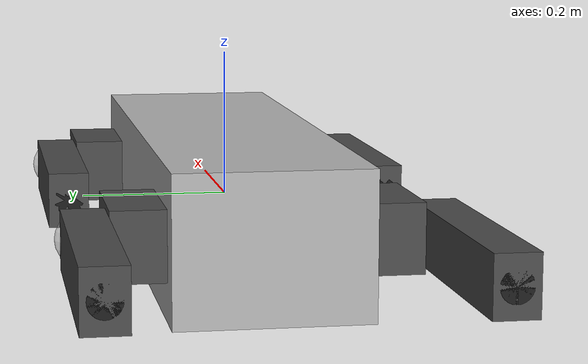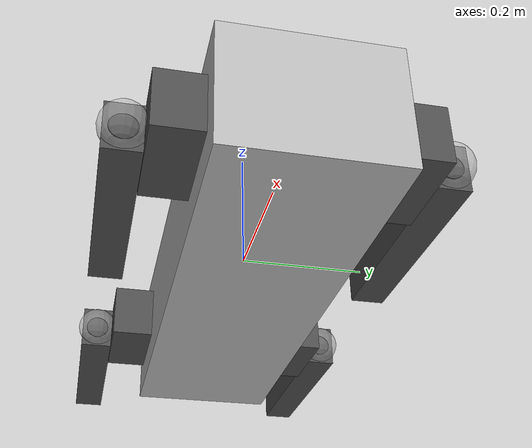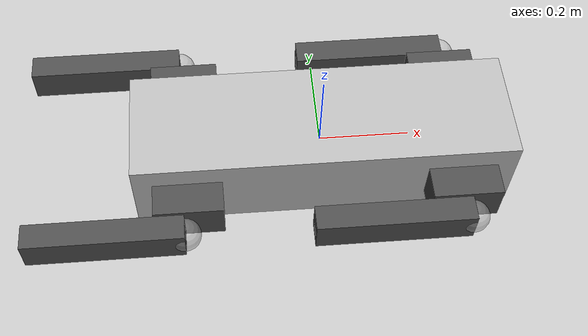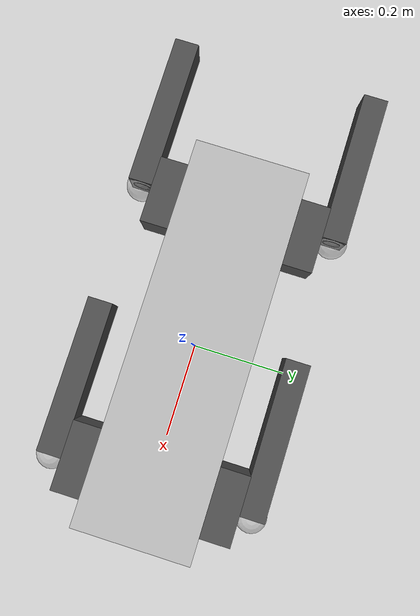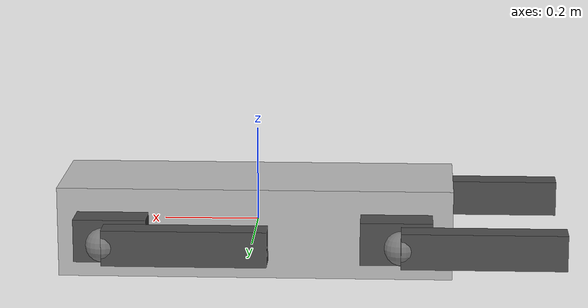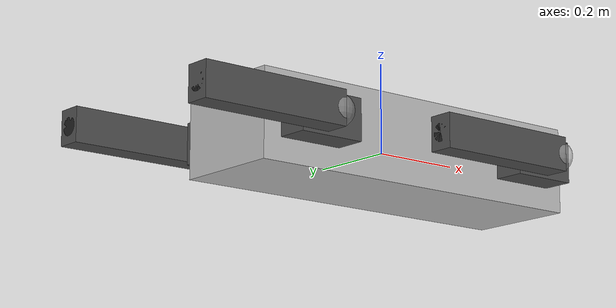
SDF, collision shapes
<sdf version='1.7'>
  <model name='vision60'>
    <link name='body'>
      <inertial>
        <pose>0 0 0 0 -0 0</pose>
        <mass>25</mass>
        <inertia>
          <ixx>0.0986</ixx>
          <ixy>0</ixy>
          <ixz>0</ixz>
          <iyy>0.8105</iyy>
          <iyz>0</iyz>
          <izz>0.8369</izz>
        </inertia>
      </inertial>
      <collision name='body_collision'>
        <pose>0 0 0 0 -0 0</pose>
        <geometry>
          <box>
            <size>0.83 0.25 0.19</size>
          </box>
        </geometry>
        <surface>
          <contact>
            <ode/>
          </contact>
          <friction>
            <ode/>
          </friction>
        </surface>
      </collision>
      <visual name='body_visual'>
        <pose>0 0 0 0 -0 0</pose>
        <geometry>
          <mesh>
            <scale>1 1 1</scale>
            <uri>model:///meshes/v5_body_decimated.stl</uri>
          </mesh>
        </geometry>
      </visual>
      <gravity>1</gravity>
    </link>

    <link name='hip0'>
      <pose relative_to='8'>0 0 0 0 -0 0</pose>
      <inertial>
        <pose>0 0 0 0 -0 0</pose>
        <mass>1.975</mass>
        <inertia>
          <ixx>0.00891458</ixx>
          <ixy>0</ixy>
          <ixz>0</ixz>
          <iyy>0.0100573</iyy>
          <iyz>0</iyz>
          <izz>0.015337</izz>
        </inertia>
      </inertial>
      <collision name='hip0_collision'>
        <pose>-0.01 0.0196 0 1.5708 -0 0</pose>
        <geometry>
          <box>
            <size>0.15 0.09 0.15</size>
          </box>
        </geometry>
        <surface>
          <contact>
            <ode/>
          </contact>
          <friction>
            <ode/>
          </friction>
        </surface>
      </collision>
      <visual name='hip0_visual'>
        <pose>0 0 0 0 -0 0</pose>
        <geometry>
          <mesh>
            <scale>1 1 1</scale>
            <uri>model:///meshes/v5_pod_decimated.stl</uri>
          </mesh>
        </geometry>
        <material>
          <script>
            <name>Gazebo/DarkGray</name>
            <uri>file://media/materials/scripts/gazebo.material</uri>
          </script>
        </material>
      </visual>
    </link>

    <joint name='8' type='revolute'>
      <pose relative_to='body'>0.3075 0.1 0 0 -0 0</pose>
      <parent>body</parent>
      <child>hip0</child>
      <axis>
        <xyz>1 0 0</xyz>
        <limit>
          <lower>-0.43</lower>
          <upper>0.43</upper>
          <effort>375</effort>
          <velocity>8.6</velocity>
        </limit>
        <dynamics>
          <damping>0</damping>
          <friction>0</friction>
          <spring_reference>0</spring_reference>
          <spring_stiffness>0</spring_stiffness>
        </dynamics>
      </axis>
    </joint>

    <link name='upper0'>
      <pose relative_to='0'>0 0 0 0 -0 0</pose>
      <inertial>
        <pose>0 0 0 0 -0 0</pose>
        <mass>2.525</mass>
        <inertia>
          <ixx>0.0003125</ixx>
          <ixy>0</ixy>
          <ixz>0</ixz>
          <iyy>0.0040625</iyy>
          <iyz>0</iyz>
          <izz>0.0040625</izz>
        </inertia>
      </inertial>
      <collision name='upper0_collision'>
        <pose>-0.17 0 0 0 -0 0</pose>
        <geometry>
          <box>
            <size>0.34 0.055 0.075</size>
          </box>
        </geometry>
        <surface>
          <contact>
            <ode/>
          </contact>
          <friction>
            <ode/>
          </friction>
        </surface>
      </collision>
      <visual name='upper0_visual'>
        <pose>0 0 0 0 -0 0</pose>
        <geometry>
          <mesh>
            <scale>1 1 1</scale>
            <uri>model:///meshes/v5_left_upper_decimated.stl</uri>
          </mesh>
        </geometry>
        <material>
          <script>
            <name>Gazebo/DarkGray</name>
            <uri>file://media/materials/scripts/gazebo.material</uri>
          </script>
        </material>
      </visual>
    </link>

    <joint name='0' type='revolute'>
      <pose relative_to='hip0'>0 0.1221 0 0 -0 0</pose>
      <parent>hip0</parent>
      <child>upper0</child>
      <axis>
        <xyz>0 -1 0</xyz>
        <limit>
          <lower>-6.28</lower>
          <upper>6.28</upper>
          <effort>87.5</effort>
          <velocity>30</velocity>
        </limit>
        <dynamics>
          <damping>0</damping>
          <friction>0</friction>
          <spring_reference>0</spring_reference>
          <spring_stiffness>0</spring_stiffness>
        </dynamics>
      </axis>
    </joint>

    <link name='lower0'>
      <pose relative_to='1'>0 0 0 0 -0 0</pose>
      <inertial>
        <pose>0.097343 0 0 0 -0 0</pose>
        <mass>0.525</mass>
        <inertia>
          <ixx>0.00133575</ixx>
          <ixy>0</ixy>
          <ixz>0</ixz>
          <iyy>0.0137725</iyy>
          <iyz>0</iyz>
          <izz>0.0125618</izz>
        </inertia>
      </inertial>
      <collision name='lower0_collision'>
        <pose>0.17035 0 0 0 1.5708 0</pose>
        <geometry>
          <cylinder>
            <length>0.3407</length>
            <radius>0.02</radius>
          </cylinder>
        </geometry>
        <surface>
          <contact>
            <ode/>
          </contact>
          <friction>
            <ode/>
          </friction>
        </surface>
      </collision>
      <visual name='lower0_visual'>
        <pose>0 0 0 0 -0.13 0</pose>
        <geometry>
          <mesh>
            <scale>1 1 1</scale>
            <uri>model:///meshes/v5_lower_decimated.stl</uri>
          </mesh>
        </geometry>
        <material>
          <script>
            <name>Gazebo/Black</name>
            <uri>file://media/materials/scripts/gazebo.material</uri>
          </script>
        </material>
      </visual>
    </link>

    <joint name='1' type='revolute'>
      <pose relative_to='upper0'>-0.34 0 0 0 -0 0</pose>
      <parent>upper0</parent>
      <child>lower0</child>
      <axis>
        <xyz>0 1 0</xyz>
        <limit>
          <lower>0.3</lower>
          <upper>2.6</upper>
          <effort>87.5</effort>
          <velocity>30</velocity>
        </limit>
        <dynamics>
          <damping>0</damping>
          <friction>0</friction>
          <spring_reference>0</spring_reference>
          <spring_stiffness>0</spring_stiffness>
        </dynamics>
      </axis>
    </joint>

    <link name='hip1'>
      <pose relative_to='9'>0 0 0 0 -0 0</pose>
      <inertial>
        <pose>0 0 0 0 -0 0</pose>
        <mass>1.975</mass>
        <inertia>
          <ixx>0.00891458</ixx>
          <ixy>0</ixy>
          <ixz>0</ixz>
          <iyy>0.0100573</iyy>
          <iyz>0</iyz>
          <izz>0.015337</izz>
        </inertia>
      </inertial>
      <collision name='hip1_collision'>
        <pose>0.01 0.0196 0 1.5708 -0 0</pose>
        <geometry>
          <box>
            <size>0.15 0.09 0.15</size>
          </box>
        </geometry>
        <surface>
          <contact>
            <ode/>
          </contact>
          <friction>
            <ode/>
          </friction>
        </surface>
      </collision>
      <visual name='hip1_visual'>
        <pose>0 0 0 -3.14159 0 -3.14159</pose>
        <geometry>
          <mesh>
            <scale>1 1 1</scale>
            <uri>model:///meshes/v5_pod_decimated.stl</uri>
          </mesh>
        </geometry>
        <material>
          <script>
            <name>Gazebo/DarkGray</name>
            <uri>file://media/materials/scripts/gazebo.material</uri>
          </script>
        </material>
      </visual>
    </link>

    <joint name='9' type='revolute'>
      <pose relative_to='body'>-0.3075 0.1 0 0 -0 0</pose>
      <parent>body</parent>
      <child>hip1</child>
      <axis>
        <xyz>1 0 0</xyz>
        <limit>
          <lower>-0.43</lower>
          <upper>0.43</upper>
          <effort>375</effort>
          <velocity>8.6</velocity>
        </limit>
        <dynamics>
          <damping>0</damping>
          <friction>0</friction>
          <spring_reference>0</spring_reference>
          <spring_stiffness>0</spring_stiffness>
        </dynamics>
      </axis>
    </joint>

    <link name='upper1'>
      <pose relative_to='2'>0 0 0 0 -0 0</pose>
      <inertial>
        <pose>0 0 0 0 -0 0</pose>
        <mass>2.525</mass>
        <inertia>
          <ixx>0.0003125</ixx>
          <ixy>0</ixy>
          <ixz>0</ixz>
          <iyy>0.0040625</iyy>
          <iyz>0</iyz>
          <izz>0.0040625</izz>
        </inertia>
      </inertial>
      <collision name='upper1_collision'>
        <pose>-0.17 0 0 0 -0 0</pose>
        <geometry>
          <box>
            <size>0.34 0.055 0.075</size>
          </box>
        </geometry>
        <surface>
          <contact>
            <ode/>
          </contact>
          <friction>
            <ode/>
          </friction>
        </surface>
      </collision>
      <visual name='upper1_visual'>
        <pose>0 0 0 0 -0 0</pose>
        <geometry>
          <mesh>
            <scale>1 1 1</scale>
            <uri>model:///meshes/v5_left_upper_decimated.stl</uri>
          </mesh>
        </geometry>
        <material>
          <script>
            <name>Gazebo/DarkGray</name>
            <uri>file://media/materials/scripts/gazebo.material</uri>
          </script>
        </material>
      </visual>
    </link>

    <joint name='2' type='revolute'>
      <pose relative_to='hip1'>0 0.1221 0 0 -0 0</pose>
      <parent>hip1</parent>
      <child>upper1</child>
      <axis>
        <xyz>0 -1 0</xyz>
        <limit>
          <lower>-3.8</lower>
          <upper>2.27</upper>
          <effort>87.5</effort>
          <velocity>30</velocity>
        </limit>
        <dynamics>
          <damping>0</damping>
          <friction>0</friction>
          <spring_reference>0</spring_reference>
          <spring_stiffness>0</spring_stiffness>
        </dynamics>
      </axis>
    </joint>

    <link name='lower1'>
      <pose relative_to='3'>0 0 0 0 -0 0</pose>
      <inertial>
        <pose>0.097343 0 0 0 -0 0</pose>
        <mass>0.525</mass>
        <inertia>
          <ixx>0.00133575</ixx>
          <ixy>0</ixy>
          <ixz>0</ixz>
          <iyy>0.0137725</iyy>
          <iyz>0</iyz>
          <izz>0.0125618</izz>
        </inertia>
      </inertial>
      <collision name='lower1_collision'>
        <pose>0.17035 0 0 0 1.5708 0</pose>
        <geometry>
          <cylinder>
            <length>0.3407</length>
            <radius>0.02</radius>
          </cylinder>
        </geometry>
        <surface>
          <contact>
            <ode/>
          </contact>
          <friction>
            <ode/>
          </friction>
        </surface>
      </collision>
      <visual name='lower1_visual'>
        <pose>0 0 0 0 -0.13 0</pose>
        <geometry>
          <mesh>
            <scale>1 1 1</scale>
            <uri>model:///meshes/v5_lower_decimated.stl</uri>
          </mesh>
        </geometry>
        <material>
          <script>
            <name>Gazebo/Black</name>
            <uri>file://media/materials/scripts/gazebo.material</uri>
          </script>
        </material>
      </visual>
    </link>

    <joint name='3' type='revolute'>
      <pose relative_to='upper1'>-0.34 0 0 0 -0 0</pose>
      <parent>upper1</parent>
      <child>lower1</child>
      <axis>
        <xyz>0 1 0</xyz>
        <limit>
          <lower>0.3</lower>
          <upper>2.6</upper>
          <effort>87.5</effort>
          <velocity>30</velocity>
        </limit>
        <dynamics>
          <damping>0</damping>
          <friction>0</friction>
          <spring_reference>0</spring_reference>
          <spring_stiffness>0</spring_stiffness>
        </dynamics>
      </axis>
    </joint>

    <link name='hip2'>
      <pose relative_to='10'>0 0 0 0 -0 0</pose>
      <inertial>
        <pose>0 0 0 0 -0 0</pose>
        <mass>1.975</mass>
        <inertia>
          <ixx>0.00891458</ixx>
          <ixy>0</ixy>
          <ixz>0</ixz>
          <iyy>0.0100573</iyy>
          <iyz>0</iyz>
          <izz>0.015337</izz>
        </inertia>
      </inertial>
      <collision name='hip2_collision'>
        <pose>-0.01 -0.0196 0 1.5708 -0 0</pose>
        <geometry>
          <box>
            <size>0.15 0.09 0.15</size>
          </box>
        </geometry>
        <surface>
          <contact>
            <ode/>
          </contact>
          <friction>
            <ode/>
          </friction>
        </surface>
      </collision>
      <visual name='hip2_visual'>
        <pose>0 0 0 3.14159 -0 0</pose>
        <geometry>
          <mesh>
            <scale>1 1 1</scale>
            <uri>model:///meshes/v5_pod_decimated.stl</uri>
          </mesh>
        </geometry>
        <material>
          <script>
            <name>Gazebo/DarkGray</name>
            <uri>file://media/materials/scripts/gazebo.material</uri>
          </script>
        </material>
      </visual>
    </link>

    <joint name='10' type='revolute'>
      <pose relative_to='body'>0.3075 -0.1 0 0 -0 0</pose>
      <parent>body</parent>
      <child>hip2</child>
      <axis>
        <xyz>1 0 0</xyz>
        <limit>
          <lower>-0.43</lower>
          <upper>0.43</upper>
          <effort>375</effort>
          <velocity>8.6</velocity>
        </limit>
        <dynamics>
          <damping>0</damping>
          <friction>0</friction>
          <spring_reference>0</spring_reference>
          <spring_stiffness>0</spring_stiffness>
        </dynamics>
      </axis>
    </joint>

    <link name='upper2'>
      <pose relative_to='4'>0 0 0 0 -0 0</pose>
      <inertial>
        <pose>0 0 0 0 -0 0</pose>
        <mass>2.525</mass>
        <inertia>
          <ixx>0.0003125</ixx>
          <ixy>0</ixy>
          <ixz>0</ixz>
          <iyy>0.0040625</iyy>
          <iyz>0</iyz>
          <izz>0.0040625</izz>
        </inertia>
      </inertial>
      <collision name='upper2_collision'>
        <pose>-0.17 0 0 0 -0 0</pose>
        <geometry>
          <box>
            <size>0.34 0.055 0.075</size>
          </box>
        </geometry>
        <surface>
          <contact>
            <ode/>
          </contact>
          <friction>
            <ode/>
          </friction>
        </surface>
      </collision>
      <visual name='upper2_visual'>
        <pose>0 0 0 0 -0 0</pose>
        <geometry>
          <mesh>
            <scale>1 1 1</scale>
            <uri>model:///meshes/v5_right_upper_decimated.stl</uri>
          </mesh>
        </geometry>
        <material>
          <script>
            <name>Gazebo/DarkGray</name>
            <uri>file://media/materials/scripts/gazebo.material</uri>
          </script>
        </material>
      </visual>
    </link>

    <joint name='4' type='revolute'>
      <pose relative_to='hip2'>0 -0.1221 0 0 -0 0</pose>
      <parent>hip2</parent>
      <child>upper2</child>
      <axis>
        <xyz>0 -1 0</xyz>
        <limit>
          <lower>-6.28</lower>
          <upper>6.28</upper>
          <effort>87.5</effort>
          <velocity>30</velocity>
        </limit>
        <dynamics>
          <damping>0</damping>
          <friction>0</friction>
          <spring_reference>0</spring_reference>
          <spring_stiffness>0</spring_stiffness>
        </dynamics>
      </axis>
    </joint>

    <link name='lower2'>
      <pose relative_to='5'>0 0 0 0 -0 0</pose>
      <inertial>
        <pose>0.097343 0 0 0 -0 0</pose>
        <mass>0.525</mass>
        <inertia>
          <ixx>0.00133575</ixx>
          <ixy>0</ixy>
          <ixz>0</ixz>
          <iyy>0.0137725</iyy>
          <iyz>0</iyz>
          <izz>0.0125618</izz>
        </inertia>
      </inertial>
      <collision name='lower2_collision'>
        <pose>0.17035 0 0 0 1.5708 0</pose>
        <geometry>
          <cylinder>
            <length>0.3407</length>
            <radius>0.02</radius>
          </cylinder>
        </geometry>
        <surface>
          <contact>
            <ode/>
          </contact>
          <friction>
            <ode/>
          </friction>
        </surface>
      </collision>
      <visual name='lower2_visual'>
        <pose>0 0 0 0 -0.13 0</pose>
        <geometry>
          <mesh>
            <scale>1 1 1</scale>
            <uri>model:///meshes/v5_lower_decimated.stl</uri>
          </mesh>
        </geometry>
        <material>
          <script>
            <name>Gazebo/Black</name>
            <uri>file://media/materials/scripts/gazebo.material</uri>
          </script>
        </material>
      </visual>
    </link>

    <joint name='5' type='revolute'>
      <pose relative_to='upper2'>-0.34 0 0 0 -0 0</pose>
      <parent>upper2</parent>
      <child>lower2</child>
      <axis>
        <xyz>0 1 0</xyz>
        <limit>
          <lower>0.3</lower>
          <upper>2.6</upper>
          <effort>87.5</effort>
          <velocity>30</velocity>
        </limit>
        <dynamics>
          <damping>0</damping>
          <friction>0</friction>
          <spring_reference>0</spring_reference>
          <spring_stiffness>0</spring_stiffness>
        </dynamics>
      </axis>
    </joint>

    <link name='hip3'>
      <pose relative_to='11'>0 0 0 0 -0 0</pose>
      <inertial>
        <pose>0 0 0 0 -0 0</pose>
        <mass>1.975</mass>
        <inertia>
          <ixx>0.00891458</ixx>
          <ixy>0</ixy>
          <ixz>0</ixz>
          <iyy>0.0100573</iyy>
          <iyz>0</iyz>
          <izz>0.015337</izz>
        </inertia>
      </inertial>
      <collision name='hip3_collision'>
        <pose>0.01 -0.0196 0 1.5708 -0 0</pose>
        <geometry>
          <box>
            <size>0.15 0.09 0.15</size>
          </box>
        </geometry>
        <surface>
          <contact>
            <ode/>
          </contact>
          <friction>
            <ode/>
          </friction>
        </surface>
      </collision>
      <visual name='hip3_visual'>
        <pose>0 0 0 -0 0 3.14159</pose>
        <geometry>
          <mesh>
            <scale>1 1 1</scale>
            <uri>model:///meshes/v5_pod_decimated.stl</uri>
          </mesh>
        </geometry>
        <material>
          <script>
            <name>Gazebo/DarkGray</name>
            <uri>file://media/materials/scripts/gazebo.material</uri>
          </script>
        </material>
      </visual>
    </link>

    <joint name='11' type='revolute'>
      <pose relative_to='body'>-0.3075 -0.1 0 0 -0 0</pose>
      <parent>body</parent>
      <child>hip3</child>
      <axis>
        <xyz>1 0 0</xyz>
        <limit>
          <lower>-0.43</lower>
          <upper>0.43</upper>
          <effort>375</effort>
          <velocity>8.6</velocity>
        </limit>
        <dynamics>
          <damping>0</damping>
          <friction>0</friction>
          <spring_reference>0</spring_reference>
          <spring_stiffness>0</spring_stiffness>
        </dynamics>
      </axis>
    </joint>

    <link name='upper3'>
      <pose relative_to='6'>0 0 0 0 -0 0</pose>
      <inertial>
        <pose>0 0 0 0 -0 0</pose>
        <mass>2.525</mass>
        <inertia>
          <ixx>0.0003125</ixx>
          <ixy>0</ixy>
          <ixz>0</ixz>
          <iyy>0.0040625</iyy>
          <iyz>0</iyz>
          <izz>0.0040625</izz>
        </inertia>
      </inertial>
      <collision name='upper3_collision'>
        <pose>-0.17 0 0 0 -0 0</pose>
        <geometry>
          <box>
            <size>0.34 0.055 0.075</size>
          </box>
        </geometry>
        <surface>
          <contact>
            <ode/>
          </contact>
          <friction>
            <ode/>
          </friction>
        </surface>
      </collision>
      <visual name='upper3_visual'>
        <pose>0 0 0 0 -0 0</pose>
        <geometry>
          <mesh>
            <scale>1 1 1</scale>
            <uri>model:///meshes/v5_right_upper_decimated.stl</uri>
          </mesh>
        </geometry>
        <material>
          <script>
            <name>Gazebo/DarkGray</name>
            <uri>file://media/materials/scripts/gazebo.material</uri>
          </script>
        </material>
      </visual>
    </link>

    <joint name='6' type='revolute'>
      <pose relative_to='hip3'>0 -0.1221 0 0 -0 0</pose>
      <parent>hip3</parent>
      <child>upper3</child>
      <axis>
        <xyz>0 -1 0</xyz>
        <limit>
          <lower>-3.8</lower>
          <upper>2.27</upper>
          <effort>87.5</effort>
          <velocity>30</velocity>
        </limit>
        <dynamics>
          <damping>0</damping>
          <friction>0</friction>
          <spring_reference>0</spring_reference>
          <spring_stiffness>0</spring_stiffness>
        </dynamics>
      </axis>
    </joint>

    <link name='lower3'>
      <pose relative_to='7'>0 0 0 0 -0 0</pose>
      <inertial>
        <pose>0.097343 0 0 0 -0 0</pose>
        <mass>0.525</mass>
        <inertia>
          <ixx>0.00133575</ixx>
          <ixy>0</ixy>
          <ixz>0</ixz>
          <iyy>0.0137725</iyy>
          <iyz>0</iyz>
          <izz>0.0125618</izz>
        </inertia>
      </inertial>
      <collision name='lower3_collision'>
        <pose>0.17035 0 0 0 1.5708 0</pose>
        <geometry>
          <cylinder>
            <length>0.3407</length>
            <radius>0.02</radius>
          </cylinder>
        </geometry>
        <surface>
          <contact>
            <ode/>
          </contact>
          <friction>
            <ode/>
          </friction>
        </surface>
      </collision>
      <visual name='lower3_visual'>
        <pose>0 0 0 0 -0.13 0</pose>
        <geometry>
          <mesh>
            <scale>1 1 1</scale>
            <uri>model:///meshes/v5_lower_decimated.stl</uri>
          </mesh>
        </geometry>
        <material>
          <script>
            <name>Gazebo/Black</name>
            <uri>file://media/materials/scripts/gazebo.material</uri>
          </script>
        </material>
      </visual>
    </link>

    <joint name='7' type='revolute'>
      <pose relative_to='upper3'>-0.34 0 0 0 -0 0</pose>
      <parent>upper3</parent>
      <child>lower3</child>
      <axis>
        <xyz>0 1 0</xyz>
        <limit>
          <lower>0.3</lower>
          <upper>2.6</upper>
          <effort>87.5</effort>
          <velocity>30</velocity>
        </limit>
        <dynamics>
          <damping>0</damping>
          <friction>0</friction>
          <spring_reference>0</spring_reference>
          <spring_stiffness>0</spring_stiffness>
        </dynamics>
      </axis>
    </joint>

    <link name='toe0'>
      <pose frame=''>0.3075 0.2221 0 0 -0 0</pose>
      <inertial>
        <pose frame=''>0 0 0 0 -0 0</pose>
        <mass>0.15</mass>
        <inertia>
          <ixx>0.000025</ixx>
          <ixy>0</ixy>
          <ixz>0</ixz>
          <iyy>0.000025</iyy>
          <iyz>0</iyz>
          <izz>0.000025</izz>
        </inertia>
      </inertial>
      <collision name='toe0_collision'>
        <pose>0 0 0 0 -0 0</pose>
        <geometry>
          <sphere>
            <radius>0.035</radius>
          </sphere>
        </geometry>
        <surface>
          <bounce>
            <restitution_coefficient>0</restitution_coefficient>
            <threshold>1e+06</threshold>
          </bounce>
          <friction>
            <torsional>
              <coefficient>0.3</coefficient>
            </torsional>
            <ode>
              <mu>20</mu>
              <mu2>10</mu2>
            </ode>
            <bullet>
              <rolling_friction>0.3</rolling_friction>
              <friction2>10</friction2>
            </bullet>
          </friction>
          <contact>
            <bullet>
              <kp>30000</kp>
              <kd>1000</kd>
              <split_impulse>1</split_impulse>
              <split_impulse_penetration_threshold>-0.01</split_impulse_penetration_threshold>
            </bullet>
            <ode>
              <kp>30000</kp>
              <kd>1000</kd>
            </ode>
          </contact>
        </surface>
      </collision>
      <sensor name="toe0_contact" type="contact">
        <plugin name="toe0_plugin" filename="libgazebo_ros_bumper.so">
          <alwaysOn>true</alwaysOn>
          <updateRate>500</updateRate>
          <bumperTopicName>gazebo/toe0_contact_state</bumperTopicName>
          <frameName>world</frameName>
        </plugin>
        <contact>
          <collision>toe0_collision</collision>
        </contact>
        <update_rate>500</update_rate>
      </sensor>
      <visual name='toe0_visual_1'>
        <pose>0 0 0 0 -0 0</pose>
        <geometry>
          <sphere>
            <radius>0.035</radius>
          </sphere>
        </geometry>
        <material>
          <script>
            <name>Gazebo/Transparent</name>
            <uri>file://media/materials/scripts/gazebo.material</uri>
          </script>
        </material>
      </visual>
    </link>
    <joint name='jtoe0' type='fixed'>
      <child>toe0</child>
      <parent>lower0</parent>
    </joint>

    <link name='toe1'>
      <pose frame=''>-0.3075 0.2221 0 0 -0 0</pose>
      <inertial>
        <pose frame=''>0 0 0 0 -0 0</pose>
        <mass>0.15</mass>
        <inertia>
          <ixx>0.000025</ixx>
          <ixy>0</ixy>
          <ixz>0</ixz>
          <iyy>0.000025</iyy>
          <iyz>0</iyz>
          <izz>0.000025</izz>
        </inertia>
      </inertial>
      <collision name='toe1_collision'>
        <pose>0 0 0 0 -0 0</pose>
        <geometry>
          <sphere>
            <radius>0.035</radius>
          </sphere>
        </geometry>
        <surface>
          <bounce>
            <restitution_coefficient>0</restitution_coefficient>
            <threshold>1e+06</threshold>
          </bounce>
          <friction>
            <torsional>
              <coefficient>0.3</coefficient>
            </torsional>
            <ode>
              <mu>20</mu>
              <mu2>10</mu2>
            </ode>
            <bullet>
              <rolling_friction>0.3</rolling_friction>
              <friction2>10</friction2>
            </bullet>
          </friction>
          <contact>
            <bullet>
              <kp>30000</kp>
              <kd>1000</kd>
              <split_impulse>1</split_impulse>
              <split_impulse_penetration_threshold>-0.01</split_impulse_penetration_threshold>
            </bullet>
            <ode>
              <kp>30000</kp>
              <kd>1000</kd>
            </ode>
          </contact>
        </surface>
      </collision>
      <sensor name="toe1_contact" type="contact">
        <plugin name="toe1_plugin" filename="libgazebo_ros_bumper.so">
          <alwaysOn>true</alwaysOn>
          <updateRate>500</updateRate>
          <bumperTopicName>gazebo/toe1_contact_state</bumperTopicName>
          <frameName>world</frameName>
        </plugin>
        <contact>
          <collision>toe1_collision</collision>
        </contact>
        <update_rate>500</update_rate>
      </sensor>
      <visual name='toe1_visual'>
        <pose>0 0 0 0 -0 0</pose>
        <geometry>
          <sphere>
            <radius>0.035</radius>
          </sphere>
        </geometry>
        <material>
          <script>
            <name>Gazebo/Transparent</name>
            <uri>file://media/materials/scripts/gazebo.material</uri>
          </script>
        </material>
      </visual>
      <gravity>1</gravity>
      <velocity_decay />
    </link>
    <joint name='jtoe1' type='fixed'>
      <child>toe1</child>
      <parent>lower1</parent>
    </joint>

    <link name='toe2'>
      <pose frame=''>0.3075 -0.2221 0 0 -0 0</pose>
      <inertial>
        <pose frame=''>0 0 0 0 -0 0</pose>
        <mass>0.15</mass>
        <inertia>
          <ixx>0.000025</ixx>
          <ixy>0</ixy>
          <ixz>0</ixz>
          <iyy>0.000025</iyy>
          <iyz>0</iyz>
          <izz>0.000025</izz>
        </inertia>
      </inertial>
      <collision name='toe2_collision'>
        <pose>0 0 0 0 -0 0</pose>
        <geometry>
          <sphere>
            <radius>0.035</radius>
          </sphere>
        </geometry>
        <surface>
          <bounce>
            <restitution_coefficient>0</restitution_coefficient>
            <threshold>1e+06</threshold>
          </bounce>
          <friction>
            <torsional>
              <coefficient>0.3</coefficient>
            </torsional>
            <ode>
              <mu>20</mu>
              <mu2>10</mu2>
            </ode>
            <bullet>
              <rolling_friction>0.3</rolling_friction>
              <friction2>10</friction2>
            </bullet>
          </friction>
          <contact>
            <bullet>
              <kp>30000</kp>
              <kd>1000</kd>
              <split_impulse>1</split_impulse>
              <split_impulse_penetration_threshold>-0.01</split_impulse_penetration_threshold>
            </bullet>
            <ode>
              <kp>30000</kp>
              <kd>1000</kd>
            </ode>
          </contact>
        </surface>
      </collision>
      <sensor name="toe2_contact" type="contact">
        <plugin name="toe2_plugin" filename="libgazebo_ros_bumper.so">
          <alwaysOn>true</alwaysOn>
          <updateRate>500</updateRate>
          <bumperTopicName>gazebo/toe2_contact_state</bumperTopicName>
          <frameName>world</frameName>
        </plugin>
        <contact>
          <collision>toe2_collision</collision>
        </contact>
        <update_rate>500</update_rate>
      </sensor>
      <visual name='toe2_visual'>
        <pose>0 0 0 0 -0 0</pose>
        <geometry>
          <sphere>
            <radius>0.035</radius>
          </sphere>
        </geometry>
        <material>
          <script>
            <name>Gazebo/Transparent</name>
            <uri>file://media/materials/scripts/gazebo.material</uri>
          </script>
        </material>
      </visual>
      <gravity>1</gravity>
      <velocity_decay />
    </link>
    <joint name='jtoe2' type='fixed'>
      <child>toe2</child>
      <parent>lower2</parent>
    </joint>

    <link name='toe3'>
      <pose frame=''>-0.3075 -0.2221 0 0 -0 0</pose>
      <inertial>
        <pose frame=''>0 0 0 0 -0 0</pose>
        <mass>0.015</mass>
        <inertia>
          <ixx>0.000025</ixx>
          <ixy>0</ixy>
          <ixz>0</ixz>
          <iyy>0.000025</iyy>
          <iyz>0</iyz>
          <izz>0.000025</izz>
        </inertia>
      </inertial>
      <collision name='toe3_collision'>
        <pose>0 0 0 0 -0 0</pose>
        <geometry>
          <sphere>
            <radius>0.035</radius>
          </sphere>
        </geometry>
        <surface>
          <bounce>
            <restitution_coefficient>0</restitution_coefficient>
            <threshold>1e+06</threshold>
          </bounce>
          <friction>
            <torsional>
              <coefficient>0.3</coefficient>
            </torsional>
            <ode>
              <mu>20</mu>
              <mu2>10</mu2>
            </ode>
            <bullet>
              <rolling_friction>0.3</rolling_friction>
              <friction2>10</friction2>
            </bullet>
          </friction>
          <contact>
            <bullet>
              <kp>30000</kp>
              <kd>1000</kd>
              <split_impulse>1</split_impulse>
              <split_impulse_penetration_threshold>-0.01</split_impulse_penetration_threshold>
            </bullet>
            <ode>
              <kp>30000</kp>
              <kd>1000</kd>
            </ode>
          </contact>
        </surface>
      </collision>
      <sensor name="toe3_contact" type="contact">
        <plugin name="toe3_plugin" filename="libgazebo_ros_bumper.so">
          <alwaysOn>true</alwaysOn>
          <updateRate>500</updateRate>
          <bumperTopicName>gazebo/toe3_contact_state</bumperTopicName>
          <frameName>world</frameName>
        </plugin>
        <contact>
          <collision>toe3_collision</collision>
        </contact>
        <update_rate>500</update_rate>
      </sensor>
      <visual name='toe3_visual'>
        <pose>0 0 0 0 -0 0</pose>
        <geometry>
          <sphere>
            <radius>0.035</radius>
          </sphere>
        </geometry>
        <material>
          <script>
            <name>Gazebo/Transparent</name>
            <uri>file://media/materials/scripts/gazebo.material</uri>
          </script>
        </material>
      </visual>
      <gravity>1</gravity>
      <velocity_decay />
    </link>
    <joint name='jtoe3' type='fixed'>
      <child>toe3</child>
      <parent>lower3</parent>
    </joint>

    <plugin name='gazebo_ros_control' filename='libgazebo_ros_control.so'>
      <robotSimType>gazebo_ros_control/DefaultRobotHWSim</robotSimType>
    </plugin>
    <plugin name='ground_truth_estimator' filename='libground_truth_estimator.so'>
      <updateRateHZ>500.0</updateRateHZ>
    </plugin>
    <static>0</static>
    <plugin name='gazebo_ros_force' filename='libgazebo_ros_force.so'>
      <topicName>/apply_force/trunk</topicName>
      <bodyName>body</bodyName>
      <xyzOffset>0 0 0</xyzOffset>
      <rpyOffset>0 -0 0</rpyOffset>
    </plugin>
  </model>
</sdf>
